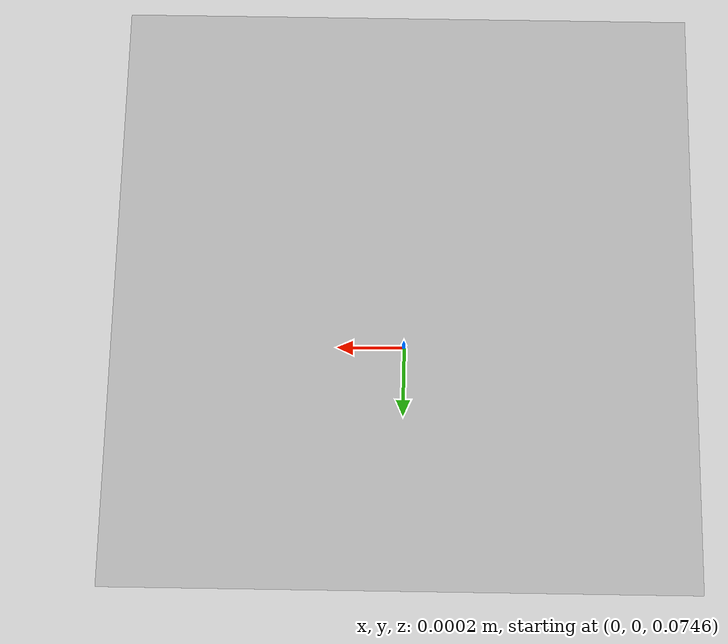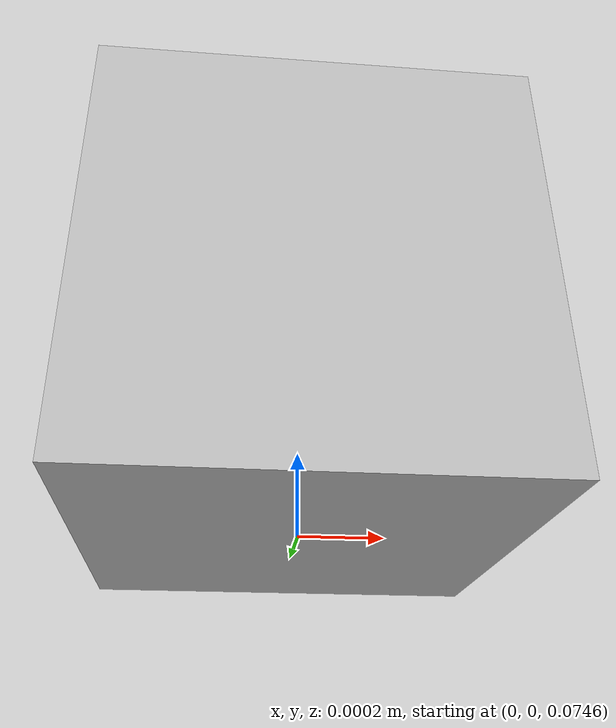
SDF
<?xml version="1.0" ?>
<sdf version="1.5">
  <model name="kinect">
    <pose>0 0 0.075077 0 0 0</pose>
    <link name="link">
      <inertial>
        <mass>0.1</mass>
          <inertia>
            <ixx>0.000166667</ixx>
            <iyy>0.000166667</iyy>
            <izz>0.000166667</izz>
          </inertia>
      </inertial>
      <collision name="collision">
        <geometry>
          <box>
            <size>0.001 0.001 0.001</size>
          </box>
        </geometry>
      </collision>
      <visual name="visual">
        <geometry>
          <box>
              <size>0.001 0.001 0.001</size>
            </box>
        </geometry>
      </visual>
      <sensor name="camera" type="depth">
        <update_rate>20</update_rate>
        <camera>
          <horizontal_fov>1.047198</horizontal_fov>
          <image>
            <width>640</width>
            <height>480</height>
            <format>R8G8B8</format>
          </image>
          <clip>
            <near>0.05</near>
            <far>3</far>
          </clip>
        </camera>

        <!-- Вставляем код плагина сюда -->
        <plugin name="camera_plugin" filename="libgazebo_ros_openni_kinect.so">
          <baseline>0.2</baseline>
          <alwaysOn>true</alwaysOn>
          <updateRate>0.0</updateRate>
          <cameraName>camera_ir</cameraName>
          <imageTopicName>/camera/color/image_raw</imageTopicName>
          <cameraInfoTopicName>/camera/color/camera_info</cameraInfoTopicName>
          <depthImageTopicName>/camera/depth/image_raw</depthImageTopicName>
          <depthImageCameraInfoTopicName>/camera/depth/camera_info</depthImageCameraInfoTopicName>
          <pointCloudTopicName>/camera/depth/points</pointCloudTopicName>
          <frameName>camera_link</frameName>
          <pointCloudCutoff>0.5</pointCloudCutoff>
          <pointCloudCutoffMax>3.0</pointCloudCutoffMax>
          <distortionK1>0</distortionK1>
          <distortionK2>0</distortionK2>
          <distortionK3>0</distortionK3>
          <distortionT1>0</distortionT1>
          <distortionT2>0</distortionT2>
          <CxPrime>0</CxPrime>
          <Cx>0</Cx>
          <Cy>0</Cy>
          <focalLength>0</focalLength>
          <hackBaseline>0</hackBaseline>
        </plugin>
      </sensor>
    </link>
  </model>
</sdf>
